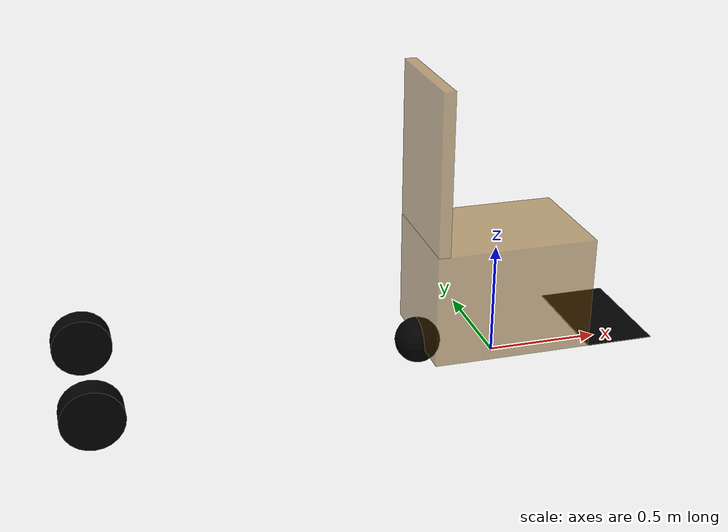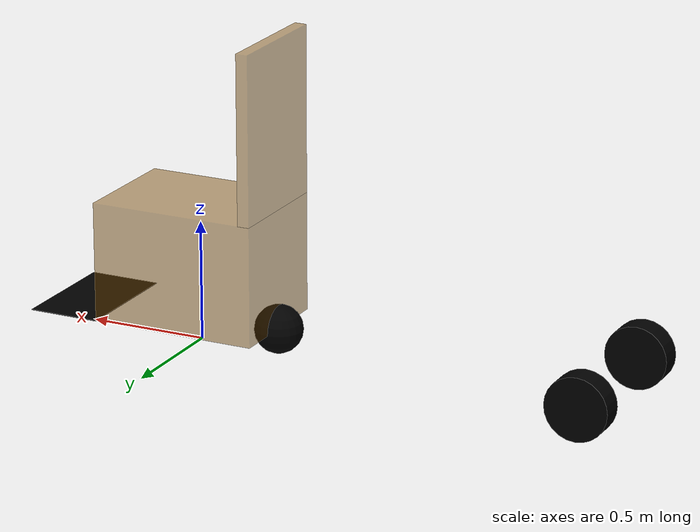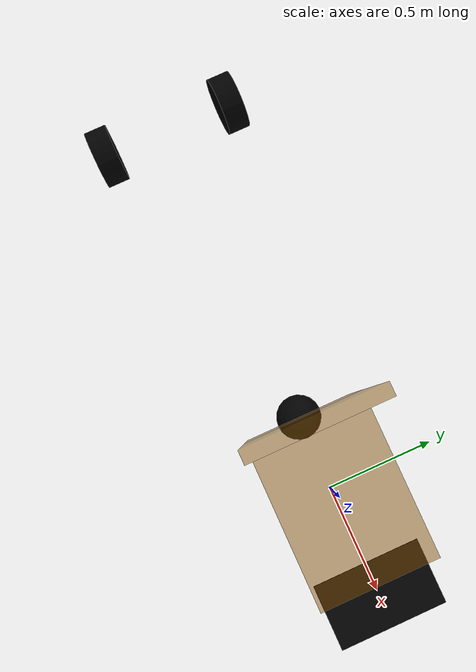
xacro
<?xml version="1.0" encoding="utf-8"?>
<robot name="mywheelchair" xmlns:xacro="http://wiki.ros.org/xacro">
    <!-- 封装变量、常量 -->
    <!-- PI 值设置精度需要高一些，否则后续车轮翻转量计算时，可能会出现肉眼不能察觉的车轮倾斜，从而导致模型抖动 -->
    <xacro:property name="PI" value="3.1415926"/>
    <!-- 宏:黑色设置 -->
    <material name="black">
        <color rgba="0.0 0.0 0.0 1.0" />
    </material>
    <!-- 底盘属性 -->
    <xacro:property name="base_footprint_radius" value="0.001" /> <!-- base_footprint 半径  -->
    <xacro:property name="base_link_length" value="0.70" /> <!-- base_link 长 -->
    <xacro:property name="base_link_width" value="0.50" /> <!-- base_link 宽 -->
    <xacro:property name="base_link_height" value="0.50" /> <!-- base_link 高 -->
    <xacro:property name="earth_space" value="0.10" /> <!-- 离地间距 -->
    <xacro:property name="base_link_m" value="1.0" /> <!-- 质量  -->

    <!-- 底盘 -->
    <link name="base_footprint">
        <visual>
            <geometry>
                <sphere radius="${base_footprint_radius}" />
            </geometry>
        </visual>
    </link>

    <link name="base_link">
      <visual>
        <geometry>
          <box size="${base_link_length} ${base_link_width} ${base_link_height}"  />
        </geometry>
        <origin xyz="0 0 0" rpy="0 0 0" />
        <material name="yellow">
          <color rgba="0.5 0.3 0.0 0.5" />
        </material>
      </visual>
      <collision>
        <geometry>
          <box size="${base_link_length} ${base_link_width} ${base_link_height}" />
        </geometry>
        <origin xyz="0 0 0" rpy="0 0 0" />
      </collision>
      <xacro:Box_inertial_matrix m="${base_link_m}" l="${base_link_length}" w="${base_link_width}" h="${base_link_height}" />
    </link>

    <joint name="base_link2base_footprint" type="fixed">
      <parent link="base_footprint" />
      <child link="base_link" />
      <origin xyz="0 0 ${earth_space + base_link_height / 2 }" />
    </joint>
    <gazebo reference="base_link">
        <material>Gazebo/Yellow</material>
    </gazebo>

    <!-- 驱动轮 -->
    <!-- 驱动轮属性 -->
    <xacro:property name="wheel_radius" value="0.13" /><!-- 半径 -->
    <xacro:property name="wheel_length" value="0.10" /><!-- 宽度 -->
    <xacro:property name="wheel_x" value="${base_link_length / 2 - wheel_radius - 2}" /> <!-- 车轮x位置-->>
    <xacro:property name="wheel_y" value="${base_link_width / 2 + wheel_length / 2}" /> <!-- 车轮y位置-->>
    <xacro:property name="wheel_m" value="0.1" /> <!-- 质量  -->

    <!-- 驱动轮宏实现 -->
    <xacro:macro name="add_wheels" params="name flag">
      <link name="${name}_front_wheel_Link">
        <visual>
          <geometry>
            <cylinder radius="${wheel_radius}" length="${wheel_length}" />
          </geometry>
          <origin xyz="0.0 0.0 0.0" rpy="${PI / 2} 0.0 0.0" />
          <material name="black" />
        </visual>
        <collision>
          <geometry>
            <cylinder radius="${wheel_radius}" length="${wheel_length}" />
          </geometry>
          <origin xyz="0.0 0.0 0.0" rpy="${PI / 2} 0.0 0.0" />
        </collision>
        <xacro:cylinder_inertial_matrix m="${wheel_m}" r="${wheel_radius}" h="${wheel_length}" />
      </link>

      <joint name="${name}_front_wheel_joint" type="continuous">
        <parent link="base_link" />
        <child link="${name}_front_wheel_Link" />
        <origin xyz="${wheel_x} ${flag * wheel_y} ${-(earth_space + base_link_height/ 2 - wheel_radius) }" />
        <axis xyz="0 1 0" />
      </joint>

      <gazebo reference="${name}_front_wheel_Link">
        <material>Gazebo/Black</material>
      </gazebo>

      <!-- 传动实现：用于连接控制器与关节 -->
      <transmission name="${name}_front_wheel_joint_trans">
          <type>transmission_interface/SimpleTransmission</type>
          <joint name="${name}_front_wheel_joint" />
          <actuator name="${name}_front_wheel_joint_motor">
              <hardwareInterface>VelocityJointInterface</hardwareInterface>
              <mechanicalReduction>1</mechanicalReduction>
          </actuator>
      </transmission>
    </xacro:macro>

    <xacro:add_wheels name="left" flag="1" />
    <xacro:add_wheels name="right" flag="-1" />

    <!-- 支撑轮 -->
    <!-- 支撑轮属性 -->
    <xacro:property name="support_wheel_radius" value="0.10" /> <!-- 支撑轮半径 -->
    <xacro:property name="support_wheel_m" value="0.03" /> <!-- 质量  -->

    <!-- 支撑轮宏 -->
    <xacro:macro name="add_support_wheel" params="name flag" >
      <link name="${name}_back_wheel">
        <visual>
          <geometry>
            <sphere radius="${support_wheel_radius}" />
          </geometry>
          <origin xyz="0 0 0" rpy="0 0 0" />
          <material name="black" />
        </visual>
        <collision>
          <geometry>
            <sphere radius="${support_wheel_radius}" />
          </geometry>
          <origin xyz="0 0 0" rpy="0 0 0" />
        </collision>
        <xacro:sphere_inertial_matrix m="${support_wheel_m}" r="${support_wheel_radius}" />
      </link>

      <joint name="${name}_back_wheel2base_link" type="continuous">
        <parent link="base_link" />
        <child link="${name}_back_wheel" />
        <origin xyz="${-(flag * base_link_length) / 2} 0 ${-(base_link_height / 2)}" />
        <axis xyz="1 1 1" />
      </joint>
      <gazebo reference="${name}_back_wheel">
        <material>Gazebo/Black</material>
      </gazebo>
    </xacro:macro>

    <xacro:add_support_wheel name="middle" flag="1" />

    <!-- 脚撑属性 -->
    <xacro:property name="foot_length" value="0.30" />
    <xacro:property name="foot_width" value="0.50" />
    <xacro:property name="foot_height" value="0.003" />
    <xacro:property name="foot_x" value="${base_link_length / 2}" /> <!-- 脚撑x位置 -->
    <xacro:property name="foot_m" value="0.03" /> <!-- 质量  -->

    <!-- 脚撑 -->
    <link name="foot_link">
        <visual>
          <geometry>
            <box size="${foot_length} ${foot_width} ${foot_height}" />
          </geometry>
          <origin xyz="0 0 0" rpy="0 0 0" />
          <material name="black" />
        </visual>
        <collision>
          <geometry>
            <box size="${foot_length} ${foot_width} ${foot_height}" />
          </geometry>
          <origin xyz="0 0 0" rpy="0 0 0" />
        </collision>
        <xacro:Box_inertial_matrix m="${foot_m}" l="${foot_length}" w="${foot_width}" h="${foot_height}" />
    </link>
    <joint name="foot_link" type="fixed">
        <parent link="base_link" />
        <child link="foot_link" />
        <origin xyz="${(foot_x + foot_length / 2)} 0 ${-(base_link_height / 2)}" />
    </joint>
    <gazebo reference="foot_link">
        <material>Gazebo/Yellow</material>
    </gazebo>

    <!-- 靠背属性 -->
    <xacro:property name="back_length" value="0.05" />
    <xacro:property name="back_width" value="0.5" />
    <xacro:property name="back_height" value="0.7" />
    <xacro:property name="back_m" value="0.5" />

    <!-- 靠背 -->
    <link name="back_link">
         <visual>
            <geometry>
              <box size="${back_length} ${back_width} ${back_height}" />
            </geometry>
            <origin xyz="0 0 ${back_height / 2}" rpy="0 0 0" />
            <material name="yellow" >
              <color rgba="0.5 0.3 0.0 0.5" />
            </material>
        </visual>
        <collision>
            <geometry>
                <box size="${back_length} ${back_width} ${back_height}" />
            </geometry>
            <origin xyz="0 0 0" rpy="0 0 0" />
        </collision>
        <xacro:Box_inertial_matrix m="${back_m}" l="${back_length}" w="${back_width}" h="${back_height}" />
    </link>
    <joint name="back_joint" type="fixed">
      <parent link="base_link" />
      <child link="back_link" />
      <origin xyz="${-(base_link_length / 2 - back_length / 2)} 0 ${(base_link_height / 2)}" />
    </joint>
    <gazebo reference="back_link">
      <material>Gazebo/Yellow</material>
    </gazebo>
</robot>
